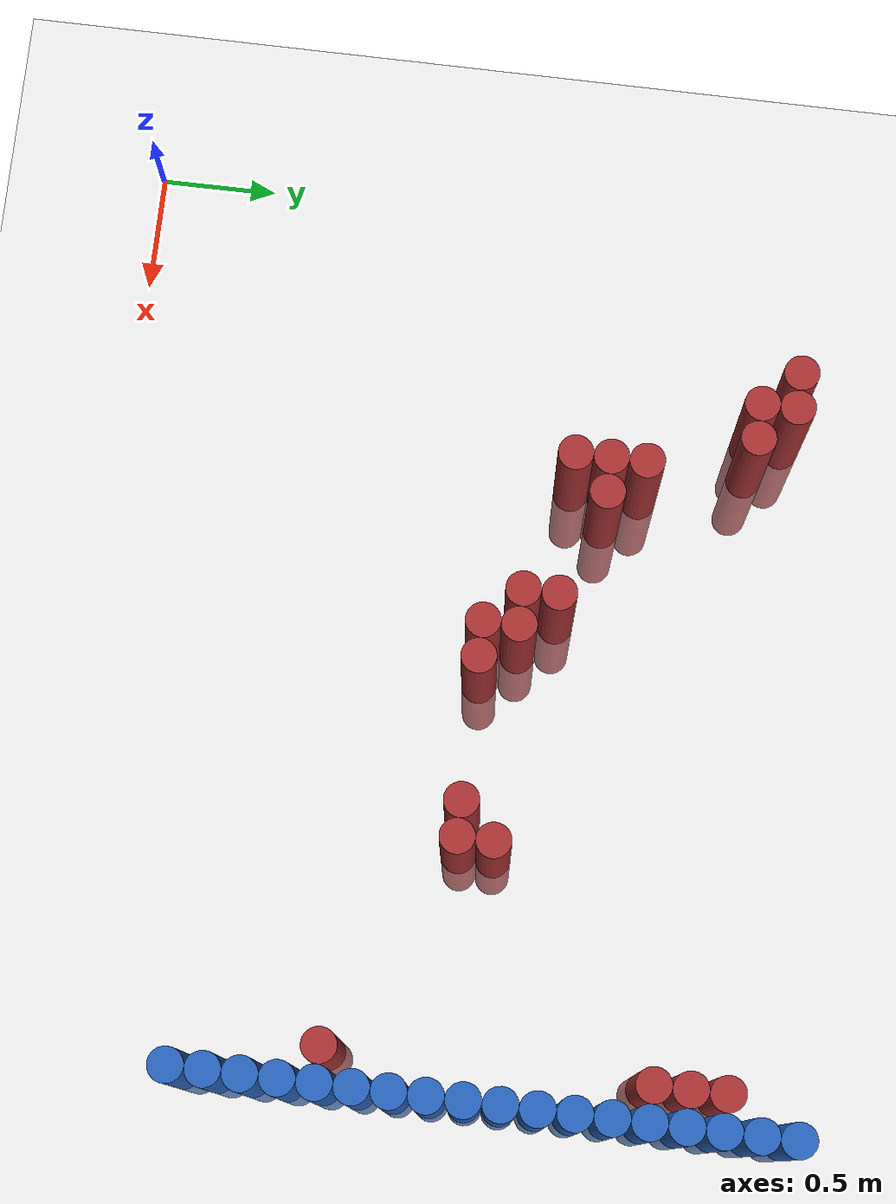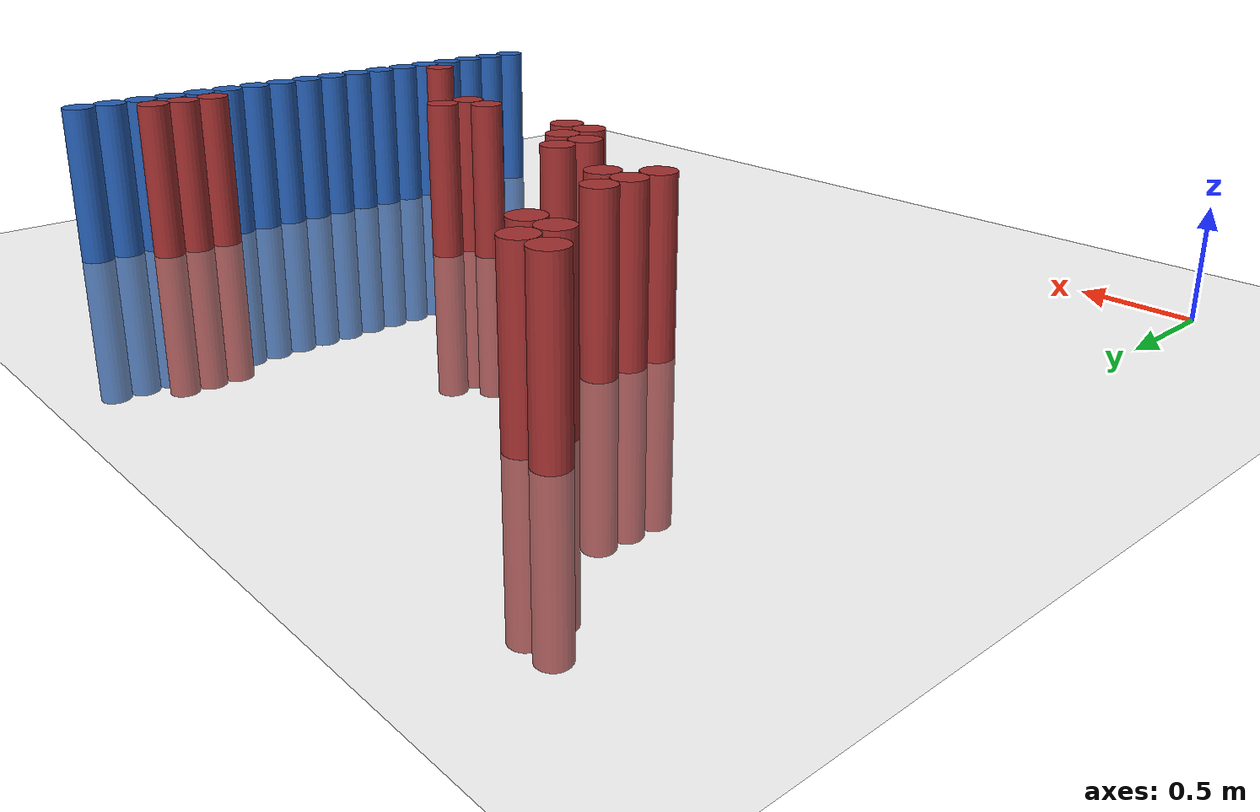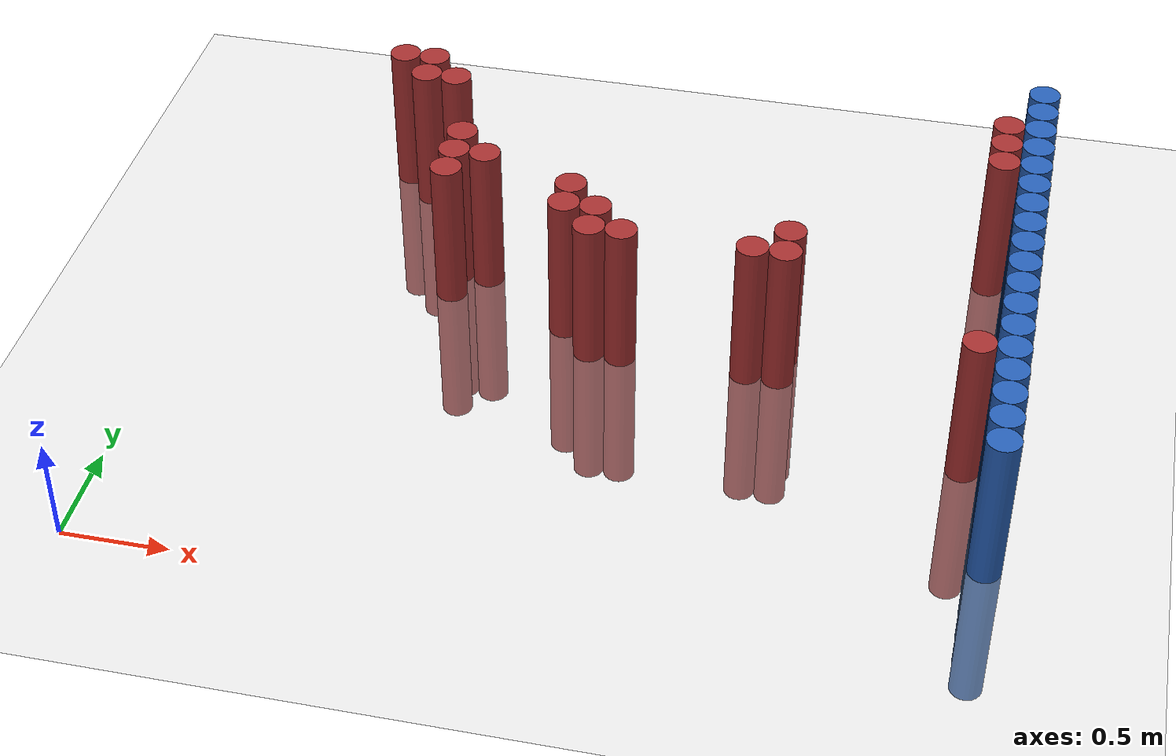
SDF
<sdf version="1.6">
 <world name="default">
  <model name="ground_plane">
   <static>1</static>
   <link name="link">
    <collision name="collision">
     <geometry><plane><normal>0 0 1</normal><size>100 100</size></plane></geometry>
     <surface><friction><ode><mu>100</mu><mu2>50</mu2></ode></friction></surface>
    </collision>
    <visual name="visual">
     <cast_shadows>0</cast_shadows>
     <geometry><plane><normal>0 0 1</normal><size>100 100</size></plane></geometry>
     <material>
      <script><uri>file://media/materials/scripts/gazebo.material</uri><name>Gazebo/Grey</name></script>
     </material>
    </visual>
   </link>
  </model>
  <model name="unit_cylinder_124">
   <static>1</static>
   <pose>3.925000 0.775000 0.000000 0.000000 0.000000 0.000000</pose>
   <link name="link">
    <inertial>
     <mass>1</mass>
     <inertia><ixx>0.145833</ixx><ixy>0</ixy><ixz>0</ixz><iyy>0.145833</iyy><iyz>0</iyz><izz>0.125</izz></inertia>
    </inertial>
    <collision name="collision">
     <geometry><cylinder><radius>0.075000</radius><length>1.5</length></cylinder></geometry>
    </collision>
    <visual name="visual">
     <geometry><cylinder><radius>0.075000</radius><length>1.5</length></cylinder></geometry>
     <material>
      <ambient>0.152000 0.379000 0.720000 1</ambient>
      <diffuse>0.152000 0.379000 0.720000 1</diffuse>
     </material>
     <material>
      <script><name>Gazebo/Grey</name><uri>file://media/materials/scripts/gazebo.material</uri></script>
     </material>
    </visual>
   </link>
  </model>
  <model name="unit_cylinder_126">
   <static>1</static>
   <pose>3.925000 0.925000 0.000000 0.000000 0.000000 0.000000</pose>
   <link name="link">
    <inertial>
     <mass>1</mass>
     <inertia><ixx>0.145833</ixx><ixy>0</ixy><ixz>0</ixz><iyy>0.145833</iyy><iyz>0</iyz><izz>0.125</izz></inertia>
    </inertial>
    <collision name="collision">
     <geometry><cylinder><radius>0.075000</radius><length>1.5</length></cylinder></geometry>
    </collision>
    <visual name="visual">
     <geometry><cylinder><radius>0.075000</radius><length>1.5</length></cylinder></geometry>
     <material>
      <ambient>0.152000 0.379000 0.720000 1</ambient>
      <diffuse>0.152000 0.379000 0.720000 1</diffuse>
     </material>
     <material>
      <script><name>Gazebo/Grey</name><uri>file://media/materials/scripts/gazebo.material</uri></script>
     </material>
    </visual>
   </link>
  </model>
  <model name="unit_cylinder_128">
   <static>1</static>
   <pose>3.925000 1.075000 0.000000 0.000000 0.000000 0.000000</pose>
   <link name="link">
    <inertial>
     <mass>1</mass>
     <inertia><ixx>0.145833</ixx><ixy>0</ixy><ixz>0</ixz><iyy>0.145833</iyy><iyz>0</iyz><izz>0.125</izz></inertia>
    </inertial>
    <collision name="collision">
     <geometry><cylinder><radius>0.075000</radius><length>1.5</length></cylinder></geometry>
    </collision>
    <visual name="visual">
     <geometry><cylinder><radius>0.075000</radius><length>1.5</length></cylinder></geometry>
     <material>
      <ambient>0.152000 0.379000 0.720000 1</ambient>
      <diffuse>0.152000 0.379000 0.720000 1</diffuse>
     </material>
     <material>
      <script><name>Gazebo/Grey</name><uri>file://media/materials/scripts/gazebo.material</uri></script>
     </material>
    </visual>
   </link>
  </model>
  <model name="unit_cylinder_130">
   <static>1</static>
   <pose>3.925000 1.225000 0.000000 0.000000 0.000000 0.000000</pose>
   <link name="link">
    <inertial>
     <mass>1</mass>
     <inertia><ixx>0.145833</ixx><ixy>0</ixy><ixz>0</ixz><iyy>0.145833</iyy><iyz>0</iyz><izz>0.125</izz></inertia>
    </inertial>
    <collision name="collision">
     <geometry><cylinder><radius>0.075000</radius><length>1.5</length></cylinder></geometry>
    </collision>
    <visual name="visual">
     <geometry><cylinder><radius>0.075000</radius><length>1.5</length></cylinder></geometry>
     <material>
      <ambient>0.152000 0.379000 0.720000 1</ambient>
      <diffuse>0.152000 0.379000 0.720000 1</diffuse>
     </material>
     <material>
      <script><name>Gazebo/Grey</name><uri>file://media/materials/scripts/gazebo.material</uri></script>
     </material>
    </visual>
   </link>
  </model>
  <model name="unit_cylinder_132">
   <static>1</static>
   <pose>3.925000 1.375000 0.000000 0.000000 0.000000 0.000000</pose>
   <link name="link">
    <inertial>
     <mass>1</mass>
     <inertia><ixx>0.145833</ixx><ixy>0</ixy><ixz>0</ixz><iyy>0.145833</iyy><iyz>0</iyz><izz>0.125</izz></inertia>
    </inertial>
    <collision name="collision">
     <geometry><cylinder><radius>0.075000</radius><length>1.5</length></cylinder></geometry>
    </collision>
    <visual name="visual">
     <geometry><cylinder><radius>0.075000</radius><length>1.5</length></cylinder></geometry>
     <material>
      <ambient>0.152000 0.379000 0.720000 1</ambient>
      <diffuse>0.152000 0.379000 0.720000 1</diffuse>
     </material>
     <material>
      <script><name>Gazebo/Grey</name><uri>file://media/materials/scripts/gazebo.material</uri></script>
     </material>
    </visual>
   </link>
  </model>
  <model name="unit_cylinder_134">
   <static>1</static>
   <pose>3.925000 1.525000 0.000000 0.000000 0.000000 0.000000</pose>
   <link name="link">
    <inertial>
     <mass>1</mass>
     <inertia><ixx>0.145833</ixx><ixy>0</ixy><ixz>0</ixz><iyy>0.145833</iyy><iyz>0</iyz><izz>0.125</izz></inertia>
    </inertial>
    <collision name="collision">
     <geometry><cylinder><radius>0.075000</radius><length>1.5</length></cylinder></geometry>
    </collision>
    <visual name="visual">
     <geometry><cylinder><radius>0.075000</radius><length>1.5</length></cylinder></geometry>
     <material>
      <ambient>0.152000 0.379000 0.720000 1</ambient>
      <diffuse>0.152000 0.379000 0.720000 1</diffuse>
     </material>
     <material>
      <script><name>Gazebo/Grey</name><uri>file://media/materials/scripts/gazebo.material</uri></script>
     </material>
    </visual>
   </link>
  </model>
  <model name="unit_cylinder_136">
   <static>1</static>
   <pose>3.925000 1.675000 0.000000 0.000000 0.000000 0.000000</pose>
   <link name="link">
    <inertial>
     <mass>1</mass>
     <inertia><ixx>0.145833</ixx><ixy>0</ixy><ixz>0</ixz><iyy>0.145833</iyy><iyz>0</iyz><izz>0.125</izz></inertia>
    </inertial>
    <collision name="collision">
     <geometry><cylinder><radius>0.075000</radius><length>1.5</length></cylinder></geometry>
    </collision>
    <visual name="visual">
     <geometry><cylinder><radius>0.075000</radius><length>1.5</length></cylinder></geometry>
     <material>
      <ambient>0.152000 0.379000 0.720000 1</ambient>
      <diffuse>0.152000 0.379000 0.720000 1</diffuse>
     </material>
     <material>
      <script><name>Gazebo/Grey</name><uri>file://media/materials/scripts/gazebo.material</uri></script>
     </material>
    </visual>
   </link>
  </model>
  <model name="unit_cylinder_138">
   <static>1</static>
   <pose>3.925000 1.825000 0.000000 0.000000 0.000000 0.000000</pose>
   <link name="link">
    <inertial>
     <mass>1</mass>
     <inertia><ixx>0.145833</ixx><ixy>0</ixy><ixz>0</ixz><iyy>0.145833</iyy><iyz>0</iyz><izz>0.125</izz></inertia>
    </inertial>
    <collision name="collision">
     <geometry><cylinder><radius>0.075000</radius><length>1.5</length></cylinder></geometry>
    </collision>
    <visual name="visual">
     <geometry><cylinder><radius>0.075000</radius><length>1.5</length></cylinder></geometry>
     <material>
      <ambient>0.152000 0.379000 0.720000 1</ambient>
      <diffuse>0.152000 0.379000 0.720000 1</diffuse>
     </material>
     <material>
      <script><name>Gazebo/Grey</name><uri>file://media/materials/scripts/gazebo.material</uri></script>
     </material>
    </visual>
   </link>
  </model>
  <model name="unit_cylinder_140">
   <static>1</static>
   <pose>3.925000 1.975000 0.000000 0.000000 0.000000 0.000000</pose>
   <link name="link">
    <inertial>
     <mass>1</mass>
     <inertia><ixx>0.145833</ixx><ixy>0</ixy><ixz>0</ixz><iyy>0.145833</iyy><iyz>0</iyz><izz>0.125</izz></inertia>
    </inertial>
    <collision name="collision">
     <geometry><cylinder><radius>0.075000</radius><length>1.5</length></cylinder></geometry>
    </collision>
    <visual name="visual">
     <geometry><cylinder><radius>0.075000</radius><length>1.5</length></cylinder></geometry>
     <material>
      <ambient>0.152000 0.379000 0.720000 1</ambient>
      <diffuse>0.152000 0.379000 0.720000 1</diffuse>
     </material>
     <material>
      <script><name>Gazebo/Grey</name><uri>file://media/materials/scripts/gazebo.material</uri></script>
     </material>
    </visual>
   </link>
  </model>
  <model name="unit_cylinder_142">
   <static>1</static>
   <pose>3.925000 2.125000 0.000000 0.000000 0.000000 0.000000</pose>
   <link name="link">
    <inertial>
     <mass>1</mass>
     <inertia><ixx>0.145833</ixx><ixy>0</ixy><ixz>0</ixz><iyy>0.145833</iyy><iyz>0</iyz><izz>0.125</izz></inertia>
    </inertial>
    <collision name="collision">
     <geometry><cylinder><radius>0.075000</radius><length>1.5</length></cylinder></geometry>
    </collision>
    <visual name="visual">
     <geometry><cylinder><radius>0.075000</radius><length>1.5</length></cylinder></geometry>
     <material>
      <ambient>0.152000 0.379000 0.720000 1</ambient>
      <diffuse>0.152000 0.379000 0.720000 1</diffuse>
     </material>
     <material>
      <script><name>Gazebo/Grey</name><uri>file://media/materials/scripts/gazebo.material</uri></script>
     </material>
    </visual>
   </link>
  </model>
  <model name="unit_cylinder_144">
   <static>1</static>
   <pose>3.925000 2.275000 0.000000 0.000000 0.000000 0.000000</pose>
   <link name="link">
    <inertial>
     <mass>1</mass>
     <inertia><ixx>0.145833</ixx><ixy>0</ixy><ixz>0</ixz><iyy>0.145833</iyy><iyz>0</iyz><izz>0.125</izz></inertia>
    </inertial>
    <collision name="collision">
     <geometry><cylinder><radius>0.075000</radius><length>1.5</length></cylinder></geometry>
    </collision>
    <visual name="visual">
     <geometry><cylinder><radius>0.075000</radius><length>1.5</length></cylinder></geometry>
     <material>
      <ambient>0.152000 0.379000 0.720000 1</ambient>
      <diffuse>0.152000 0.379000 0.720000 1</diffuse>
     </material>
     <material>
      <script><name>Gazebo/Grey</name><uri>file://media/materials/scripts/gazebo.material</uri></script>
     </material>
    </visual>
   </link>
  </model>
  <model name="unit_cylinder_146">
   <static>1</static>
   <pose>3.925000 2.425000 0.000000 0.000000 0.000000 0.000000</pose>
   <link name="link">
    <inertial>
     <mass>1</mass>
     <inertia><ixx>0.145833</ixx><ixy>0</ixy><ixz>0</ixz><iyy>0.145833</iyy><iyz>0</iyz><izz>0.125</izz></inertia>
    </inertial>
    <collision name="collision">
     <geometry><cylinder><radius>0.075000</radius><length>1.5</length></cylinder></geometry>
    </collision>
    <visual name="visual">
     <geometry><cylinder><radius>0.075000</radius><length>1.5</length></cylinder></geometry>
     <material>
      <ambient>0.152000 0.379000 0.720000 1</ambient>
      <diffuse>0.152000 0.379000 0.720000 1</diffuse>
     </material>
     <material>
      <script><name>Gazebo/Grey</name><uri>file://media/materials/scripts/gazebo.material</uri></script>
     </material>
    </visual>
   </link>
  </model>
  <model name="unit_cylinder_148">
   <static>1</static>
   <pose>3.925000 2.575000 0.000000 0.000000 0.000000 0.000000</pose>
   <link name="link">
    <inertial>
     <mass>1</mass>
     <inertia><ixx>0.145833</ixx><ixy>0</ixy><ixz>0</ixz><iyy>0.145833</iyy><iyz>0</iyz><izz>0.125</izz></inertia>
    </inertial>
    <collision name="collision">
     <geometry><cylinder><radius>0.075000</radius><length>1.5</length></cylinder></geometry>
    </collision>
    <visual name="visual">
     <geometry><cylinder><radius>0.075000</radius><length>1.5</length></cylinder></geometry>
     <material>
      <ambient>0.152000 0.379000 0.720000 1</ambient>
      <diffuse>0.152000 0.379000 0.720000 1</diffuse>
     </material>
     <material>
      <script><name>Gazebo/Grey</name><uri>file://media/materials/scripts/gazebo.material</uri></script>
     </material>
    </visual>
   </link>
  </model>
  <model name="unit_cylinder_150">
   <static>1</static>
   <pose>3.925000 2.725000 0.000000 0.000000 0.000000 0.000000</pose>
   <link name="link">
    <inertial>
     <mass>1</mass>
     <inertia><ixx>0.145833</ixx><ixy>0</ixy><ixz>0</ixz><iyy>0.145833</iyy><iyz>0</iyz><izz>0.125</izz></inertia>
    </inertial>
    <collision name="collision">
     <geometry><cylinder><radius>0.075000</radius><length>1.5</length></cylinder></geometry>
    </collision>
    <visual name="visual">
     <geometry><cylinder><radius>0.075000</radius><length>1.5</length></cylinder></geometry>
     <material>
      <ambient>0.152000 0.379000 0.720000 1</ambient>
      <diffuse>0.152000 0.379000 0.720000 1</diffuse>
     </material>
     <material>
      <script><name>Gazebo/Grey</name><uri>file://media/materials/scripts/gazebo.material</uri></script>
     </material>
    </visual>
   </link>
  </model>
  <model name="unit_cylinder_152">
   <static>1</static>
   <pose>3.925000 2.875000 0.000000 0.000000 0.000000 0.000000</pose>
   <link name="link">
    <inertial>
     <mass>1</mass>
     <inertia><ixx>0.145833</ixx><ixy>0</ixy><ixz>0</ixz><iyy>0.145833</iyy><iyz>0</iyz><izz>0.125</izz></inertia>
    </inertial>
    <collision name="collision">
     <geometry><cylinder><radius>0.075000</radius><length>1.5</length></cylinder></geometry>
    </collision>
    <visual name="visual">
     <geometry><cylinder><radius>0.075000</radius><length>1.5</length></cylinder></geometry>
     <material>
      <ambient>0.152000 0.379000 0.720000 1</ambient>
      <diffuse>0.152000 0.379000 0.720000 1</diffuse>
     </material>
     <material>
      <script><name>Gazebo/Grey</name><uri>file://media/materials/scripts/gazebo.material</uri></script>
     </material>
    </visual>
   </link>
  </model>
  <model name="unit_cylinder_154">
   <static>1</static>
   <pose>3.925000 3.025000 0.000000 0.000000 0.000000 0.000000</pose>
   <link name="link">
    <inertial>
     <mass>1</mass>
     <inertia><ixx>0.145833</ixx><ixy>0</ixy><ixz>0</ixz><iyy>0.145833</iyy><iyz>0</iyz><izz>0.125</izz></inertia>
    </inertial>
    <collision name="collision">
     <geometry><cylinder><radius>0.075000</radius><length>1.5</length></cylinder></geometry>
    </collision>
    <visual name="visual">
     <geometry><cylinder><radius>0.075000</radius><length>1.5</length></cylinder></geometry>
     <material>
      <ambient>0.152000 0.379000 0.720000 1</ambient>
      <diffuse>0.152000 0.379000 0.720000 1</diffuse>
     </material>
     <material>
      <script><name>Gazebo/Grey</name><uri>file://media/materials/scripts/gazebo.material</uri></script>
     </material>
    </visual>
   </link>
  </model>
  <model name="unit_cylinder_156">
   <static>1</static>
   <pose>3.925000 3.175000 0.000000 0.000000 0.000000 0.000000</pose>
   <link name="link">
    <inertial>
     <mass>1</mass>
     <inertia><ixx>0.145833</ixx><ixy>0</ixy><ixz>0</ixz><iyy>0.145833</iyy><iyz>0</iyz><izz>0.125</izz></inertia>
    </inertial>
    <collision name="collision">
     <geometry><cylinder><radius>0.075000</radius><length>1.5</length></cylinder></geometry>
    </collision>
    <visual name="visual">
     <geometry><cylinder><radius>0.075000</radius><length>1.5</length></cylinder></geometry>
     <material>
      <ambient>0.152000 0.379000 0.720000 1</ambient>
      <diffuse>0.152000 0.379000 0.720000 1</diffuse>
     </material>
     <material>
      <script><name>Gazebo/Grey</name><uri>file://media/materials/scripts/gazebo.material</uri></script>
     </material>
    </visual>
   </link>
  </model>
  <model name="unit_cylinder_330">
   <static>1</static>
   <pose>0.775000 2.875000 0.000000 0.000000 0.000000 0.000000</pose>
   <link name="link">
    <inertial>
     <mass>1</mass>
     <inertia><ixx>0.145833</ixx><ixy>0</ixy><ixz>0</ixz><iyy>0.145833</iyy><iyz>0</iyz><izz>0.125</izz></inertia>
    </inertial>
    <collision name="collision">
     <geometry><cylinder><radius>0.075000</radius><length>1.5</length></cylinder></geometry>
    </collision>
    <visual name="visual">
     <geometry><cylinder><radius>0.075000</radius><length>1.5</length></cylinder></geometry>
     <material>
      <ambient>0.648000 0.192000 0.192000 1</ambient>
      <diffuse>0.648000 0.192000 0.192000 1</diffuse>
     </material>
     <material>
      <script><name>Gazebo/Grey</name><uri>file://media/materials/scripts/gazebo.material</uri></script>
     </material>
    </visual>
   </link>
  </model>
  <model name="unit_cylinder_332">
   <static>1</static>
   <pose>0.925000 2.725000 0.000000 0.000000 0.000000 0.000000</pose>
   <link name="link">
    <inertial>
     <mass>1</mass>
     <inertia><ixx>0.145833</ixx><ixy>0</ixy><ixz>0</ixz><iyy>0.145833</iyy><iyz>0</iyz><izz>0.125</izz></inertia>
    </inertial>
    <collision name="collision">
     <geometry><cylinder><radius>0.075000</radius><length>1.5</length></cylinder></geometry>
    </collision>
    <visual name="visual">
     <geometry><cylinder><radius>0.075000</radius><length>1.5</length></cylinder></geometry>
     <material>
      <ambient>0.648000 0.192000 0.192000 1</ambient>
      <diffuse>0.648000 0.192000 0.192000 1</diffuse>
     </material>
     <material>
      <script><name>Gazebo/Grey</name><uri>file://media/materials/scripts/gazebo.material</uri></script>
     </material>
    </visual>
   </link>
  </model>
  <model name="unit_cylinder_333">
   <static>1</static>
   <pose>0.925000 2.875000 0.000000 0.000000 0.000000 0.000000</pose>
   <link name="link">
    <inertial>
     <mass>1</mass>
     <inertia><ixx>0.145833</ixx><ixy>0</ixy><ixz>0</ixz><iyy>0.145833</iyy><iyz>0</iyz><izz>0.125</izz></inertia>
    </inertial>
    <collision name="collision">
     <geometry><cylinder><radius>0.075000</radius><length>1.5</length></cylinder></geometry>
    </collision>
    <visual name="visual">
     <geometry><cylinder><radius>0.075000</radius><length>1.5</length></cylinder></geometry>
     <material>
      <ambient>0.648000 0.192000 0.192000 1</ambient>
      <diffuse>0.648000 0.192000 0.192000 1</diffuse>
     </material>
     <material>
      <script><name>Gazebo/Grey</name><uri>file://media/materials/scripts/gazebo.material</uri></script>
     </material>
    </visual>
   </link>
  </model>
  <model name="unit_cylinder_339">
   <static>1</static>
   <pose>1.075000 2.725000 0.000000 0.000000 0.000000 0.000000</pose>
   <link name="link">
    <inertial>
     <mass>1</mass>
     <inertia><ixx>0.145833</ixx><ixy>0</ixy><ixz>0</ixz><iyy>0.145833</iyy><iyz>0</iyz><izz>0.125</izz></inertia>
    </inertial>
    <collision name="collision">
     <geometry><cylinder><radius>0.075000</radius><length>1.5</length></cylinder></geometry>
    </collision>
    <visual name="visual">
     <geometry><cylinder><radius>0.075000</radius><length>1.5</length></cylinder></geometry>
     <material>
      <ambient>0.648000 0.192000 0.192000 1</ambient>
      <diffuse>0.648000 0.192000 0.192000 1</diffuse>
     </material>
     <material>
      <script><name>Gazebo/Grey</name><uri>file://media/materials/scripts/gazebo.material</uri></script>
     </material>
    </visual>
   </link>
  </model>
  <model name="unit_cylinder_341">
   <static>1</static>
   <pose>1.225000 1.975000 0.000000 0.000000 0.000000 0.000000</pose>
   <link name="link">
    <inertial>
     <mass>1</mass>
     <inertia><ixx>0.145833</ixx><ixy>0</ixy><ixz>0</ixz><iyy>0.145833</iyy><iyz>0</iyz><izz>0.125</izz></inertia>
    </inertial>
    <collision name="collision">
     <geometry><cylinder><radius>0.075000</radius><length>1.5</length></cylinder></geometry>
    </collision>
    <visual name="visual">
     <geometry><cylinder><radius>0.075000</radius><length>1.5</length></cylinder></geometry>
     <material>
      <ambient>0.648000 0.192000 0.192000 1</ambient>
      <diffuse>0.648000 0.192000 0.192000 1</diffuse>
     </material>
     <material>
      <script><name>Gazebo/Grey</name><uri>file://media/materials/scripts/gazebo.material</uri></script>
     </material>
    </visual>
   </link>
  </model>
  <model name="unit_cylinder_342">
   <static>1</static>
   <pose>1.225000 2.125000 0.000000 0.000000 0.000000 0.000000</pose>
   <link name="link">
    <inertial>
     <mass>1</mass>
     <inertia><ixx>0.145833</ixx><ixy>0</ixy><ixz>0</ixz><iyy>0.145833</iyy><iyz>0</iyz><izz>0.125</izz></inertia>
    </inertial>
    <collision name="collision">
     <geometry><cylinder><radius>0.075000</radius><length>1.5</length></cylinder></geometry>
    </collision>
    <visual name="visual">
     <geometry><cylinder><radius>0.075000</radius><length>1.5</length></cylinder></geometry>
     <material>
      <ambient>0.648000 0.192000 0.192000 1</ambient>
      <diffuse>0.648000 0.192000 0.192000 1</diffuse>
     </material>
     <material>
      <script><name>Gazebo/Grey</name><uri>file://media/materials/scripts/gazebo.material</uri></script>
     </material>
    </visual>
   </link>
  </model>
  <model name="unit_cylinder_343">
   <static>1</static>
   <pose>1.225000 2.275000 0.000000 0.000000 0.000000 0.000000</pose>
   <link name="link">
    <inertial>
     <mass>1</mass>
     <inertia><ixx>0.145833</ixx><ixy>0</ixy><ixz>0</ixz><iyy>0.145833</iyy><iyz>0</iyz><izz>0.125</izz></inertia>
    </inertial>
    <collision name="collision">
     <geometry><cylinder><radius>0.075000</radius><length>1.5</length></cylinder></geometry>
    </collision>
    <visual name="visual">
     <geometry><cylinder><radius>0.075000</radius><length>1.5</length></cylinder></geometry>
     <material>
      <ambient>0.648000 0.192000 0.192000 1</ambient>
      <diffuse>0.648000 0.192000 0.192000 1</diffuse>
     </material>
     <material>
      <script><name>Gazebo/Grey</name><uri>file://media/materials/scripts/gazebo.material</uri></script>
     </material>
    </visual>
   </link>
  </model>
  <model name="unit_cylinder_344">
   <static>1</static>
   <pose>1.375000 2.125000 0.000000 0.000000 0.000000 0.000000</pose>
   <link name="link">
    <inertial>
     <mass>1</mass>
     <inertia><ixx>0.145833</ixx><ixy>0</ixy><ixz>0</ixz><iyy>0.145833</iyy><iyz>0</iyz><izz>0.125</izz></inertia>
    </inertial>
    <collision name="collision">
     <geometry><cylinder><radius>0.075000</radius><length>1.5</length></cylinder></geometry>
    </collision>
    <visual name="visual">
     <geometry><cylinder><radius>0.075000</radius><length>1.5</length></cylinder></geometry>
     <material>
      <ambient>0.648000 0.192000 0.192000 1</ambient>
      <diffuse>0.648000 0.192000 0.192000 1</diffuse>
     </material>
     <material>
      <script><name>Gazebo/Grey</name><uri>file://media/materials/scripts/gazebo.material</uri></script>
     </material>
    </visual>
   </link>
  </model>
  <model name="unit_cylinder_345">
   <static>1</static>
   <pose>1.825000 1.825000 0.000000 0.000000 0.000000 0.000000</pose>
   <link name="link">
    <inertial>
     <mass>1</mass>
     <inertia><ixx>0.145833</ixx><ixy>0</ixy><ixz>0</ixz><iyy>0.145833</iyy><iyz>0</iyz><izz>0.125</izz></inertia>
    </inertial>
    <collision name="collision">
     <geometry><cylinder><radius>0.075000</radius><length>1.5</length></cylinder></geometry>
    </collision>
    <visual name="visual">
     <geometry><cylinder><radius>0.075000</radius><length>1.5</length></cylinder></geometry>
     <material>
      <ambient>0.648000 0.192000 0.192000 1</ambient>
      <diffuse>0.648000 0.192000 0.192000 1</diffuse>
     </material>
     <material>
      <script><name>Gazebo/Grey</name><uri>file://media/materials/scripts/gazebo.material</uri></script>
     </material>
    </visual>
   </link>
  </model>
  <model name="unit_cylinder_346">
   <static>1</static>
   <pose>1.825000 1.975000 0.000000 0.000000 0.000000 0.000000</pose>
   <link name="link">
    <inertial>
     <mass>1</mass>
     <inertia><ixx>0.145833</ixx><ixy>0</ixy><ixz>0</ixz><iyy>0.145833</iyy><iyz>0</iyz><izz>0.125</izz></inertia>
    </inertial>
    <collision name="collision">
     <geometry><cylinder><radius>0.075000</radius><length>1.5</length></cylinder></geometry>
    </collision>
    <visual name="visual">
     <geometry><cylinder><radius>0.075000</radius><length>1.5</length></cylinder></geometry>
     <material>
      <ambient>0.648000 0.192000 0.192000 1</ambient>
      <diffuse>0.648000 0.192000 0.192000 1</diffuse>
     </material>
     <material>
      <script><name>Gazebo/Grey</name><uri>file://media/materials/scripts/gazebo.material</uri></script>
     </material>
    </visual>
   </link>
  </model>
  <model name="unit_cylinder_349">
   <static>1</static>
   <pose>1.975000 1.675000 0.000000 0.000000 0.000000 0.000000</pose>
   <link name="link">
    <inertial>
     <mass>1</mass>
     <inertia><ixx>0.145833</ixx><ixy>0</ixy><ixz>0</ixz><iyy>0.145833</iyy><iyz>0</iyz><izz>0.125</izz></inertia>
    </inertial>
    <collision name="collision">
     <geometry><cylinder><radius>0.075000</radius><length>1.5</length></cylinder></geometry>
    </collision>
    <visual name="visual">
     <geometry><cylinder><radius>0.075000</radius><length>1.5</length></cylinder></geometry>
     <material>
      <ambient>0.648000 0.192000 0.192000 1</ambient>
      <diffuse>0.648000 0.192000 0.192000 1</diffuse>
     </material>
     <material>
      <script><name>Gazebo/Grey</name><uri>file://media/materials/scripts/gazebo.material</uri></script>
     </material>
    </visual>
   </link>
  </model>
  <model name="unit_cylinder_350">
   <static>1</static>
   <pose>1.975000 1.825000 0.000000 0.000000 0.000000 0.000000</pose>
   <link name="link">
    <inertial>
     <mass>1</mass>
     <inertia><ixx>0.145833</ixx><ixy>0</ixy><ixz>0</ixz><iyy>0.145833</iyy><iyz>0</iyz><izz>0.125</izz></inertia>
    </inertial>
    <collision name="collision">
     <geometry><cylinder><radius>0.075000</radius><length>1.5</length></cylinder></geometry>
    </collision>
    <visual name="visual">
     <geometry><cylinder><radius>0.075000</radius><length>1.5</length></cylinder></geometry>
     <material>
      <ambient>0.648000 0.192000 0.192000 1</ambient>
      <diffuse>0.648000 0.192000 0.192000 1</diffuse>
     </material>
     <material>
      <script><name>Gazebo/Grey</name><uri>file://media/materials/scripts/gazebo.material</uri></script>
     </material>
    </visual>
   </link>
  </model>
  <model name="unit_cylinder_354">
   <static>1</static>
   <pose>2.125000 1.675000 0.000000 0.000000 0.000000 0.000000</pose>
   <link name="link">
    <inertial>
     <mass>1</mass>
     <inertia><ixx>0.145833</ixx><ixy>0</ixy><ixz>0</ixz><iyy>0.145833</iyy><iyz>0</iyz><izz>0.125</izz></inertia>
    </inertial>
    <collision name="collision">
     <geometry><cylinder><radius>0.075000</radius><length>1.5</length></cylinder></geometry>
    </collision>
    <visual name="visual">
     <geometry><cylinder><radius>0.075000</radius><length>1.5</length></cylinder></geometry>
     <material>
      <ambient>0.648000 0.192000 0.192000 1</ambient>
      <diffuse>0.648000 0.192000 0.192000 1</diffuse>
     </material>
     <material>
      <script><name>Gazebo/Grey</name><uri>file://media/materials/scripts/gazebo.material</uri></script>
     </material>
    </visual>
   </link>
  </model>
  <model name="unit_cylinder_365">
   <static>1</static>
   <pose>2.725000 1.675000 0.000000 0.000000 0.000000 0.000000</pose>
   <link name="link">
    <inertial>
     <mass>1</mass>
     <inertia><ixx>0.145833</ixx><ixy>0</ixy><ixz>0</ixz><iyy>0.145833</iyy><iyz>0</iyz><izz>0.125</izz></inertia>
    </inertial>
    <collision name="collision">
     <geometry><cylinder><radius>0.075000</radius><length>1.5</length></cylinder></geometry>
    </collision>
    <visual name="visual">
     <geometry><cylinder><radius>0.075000</radius><length>1.5</length></cylinder></geometry>
     <material>
      <ambient>0.648000 0.192000 0.192000 1</ambient>
      <diffuse>0.648000 0.192000 0.192000 1</diffuse>
     </material>
     <material>
      <script><name>Gazebo/Grey</name><uri>file://media/materials/scripts/gazebo.material</uri></script>
     </material>
    </visual>
   </link>
  </model>
  <model name="unit_cylinder_366">
   <static>1</static>
   <pose>2.875000 1.675000 0.000000 0.000000 0.000000 0.000000</pose>
   <link name="link">
    <inertial>
     <mass>1</mass>
     <inertia><ixx>0.145833</ixx><ixy>0</ixy><ixz>0</ixz><iyy>0.145833</iyy><iyz>0</iyz><izz>0.125</izz></inertia>
    </inertial>
    <collision name="collision">
     <geometry><cylinder><radius>0.075000</radius><length>1.5</length></cylinder></geometry>
    </collision>
    <visual name="visual">
     <geometry><cylinder><radius>0.075000</radius><length>1.5</length></cylinder></geometry>
     <material>
      <ambient>0.648000 0.192000 0.192000 1</ambient>
      <diffuse>0.648000 0.192000 0.192000 1</diffuse>
     </material>
     <material>
      <script><name>Gazebo/Grey</name><uri>file://media/materials/scripts/gazebo.material</uri></script>
     </material>
    </visual>
   </link>
  </model>
  <model name="unit_cylinder_367">
   <static>1</static>
   <pose>2.875000 1.825000 0.000000 0.000000 0.000000 0.000000</pose>
   <link name="link">
    <inertial>
     <mass>1</mass>
     <inertia><ixx>0.145833</ixx><ixy>0</ixy><ixz>0</ixz><iyy>0.145833</iyy><iyz>0</iyz><izz>0.125</izz></inertia>
    </inertial>
    <collision name="collision">
     <geometry><cylinder><radius>0.075000</radius><length>1.5</length></cylinder></geometry>
    </collision>
    <visual name="visual">
     <geometry><cylinder><radius>0.075000</radius><length>1.5</length></cylinder></geometry>
     <material>
      <ambient>0.648000 0.192000 0.192000 1</ambient>
      <diffuse>0.648000 0.192000 0.192000 1</diffuse>
     </material>
     <material>
      <script><name>Gazebo/Grey</name><uri>file://media/materials/scripts/gazebo.material</uri></script>
     </material>
    </visual>
   </link>
  </model>
  <model name="unit_cylinder_377">
   <static>1</static>
   <pose>3.775000 1.225000 0.000000 0.000000 0.000000 0.000000</pose>
   <link name="link">
    <inertial>
     <mass>1</mass>
     <inertia><ixx>0.145833</ixx><ixy>0</ixy><ixz>0</ixz><iyy>0.145833</iyy><iyz>0</iyz><izz>0.125</izz></inertia>
    </inertial>
    <collision name="collision">
     <geometry><cylinder><radius>0.075000</radius><length>1.5</length></cylinder></geometry>
    </collision>
    <visual name="visual">
     <geometry><cylinder><radius>0.075000</radius><length>1.5</length></cylinder></geometry>
     <material>
      <ambient>0.648000 0.192000 0.192000 1</ambient>
      <diffuse>0.648000 0.192000 0.192000 1</diffuse>
     </material>
     <material>
      <script><name>Gazebo/Grey</name><uri>file://media/materials/scripts/gazebo.material</uri></script>
     </material>
    </visual>
   </link>
  </model>
  <model name="unit_cylinder_378">
   <static>1</static>
   <pose>3.775000 2.575000 0.000000 0.000000 0.000000 0.000000</pose>
   <link name="link">
    <inertial>
     <mass>1</mass>
     <inertia><ixx>0.145833</ixx><ixy>0</ixy><ixz>0</ixz><iyy>0.145833</iyy><iyz>0</iyz><izz>0.125</izz></inertia>
    </inertial>
    <collision name="collision">
     <geometry><cylinder><radius>0.075000</radius><length>1.5</length></cylinder></geometry>
    </collision>
    <visual name="visual">
     <geometry><cylinder><radius>0.075000</radius><length>1.5</length></cylinder></geometry>
     <material>
      <ambient>0.648000 0.192000 0.192000 1</ambient>
      <diffuse>0.648000 0.192000 0.192000 1</diffuse>
     </material>
     <material>
      <script><name>Gazebo/Grey</name><uri>file://media/materials/scripts/gazebo.material</uri></script>
     </material>
    </visual>
   </link>
  </model>
  <model name="unit_cylinder_379">
   <static>1</static>
   <pose>3.775000 2.725000 0.000000 0.000000 0.000000 0.000000</pose>
   <link name="link">
    <inertial>
     <mass>1</mass>
     <inertia><ixx>0.145833</ixx><ixy>0</ixy><ixz>0</ixz><iyy>0.145833</iyy><iyz>0</iyz><izz>0.125</izz></inertia>
    </inertial>
    <collision name="collision">
     <geometry><cylinder><radius>0.075000</radius><length>1.5</length></cylinder></geometry>
    </collision>
    <visual name="visual">
     <geometry><cylinder><radius>0.075000</radius><length>1.5</length></cylinder></geometry>
     <material>
      <ambient>0.648000 0.192000 0.192000 1</ambient>
      <diffuse>0.648000 0.192000 0.192000 1</diffuse>
     </material>
     <material>
      <script><name>Gazebo/Grey</name><uri>file://media/materials/scripts/gazebo.material</uri></script>
     </material>
    </visual>
   </link>
  </model>
  <model name="unit_cylinder_380">
   <static>1</static>
   <pose>3.775000 2.875000 0.000000 0.000000 0.000000 0.000000</pose>
   <link name="link">
    <inertial>
     <mass>1</mass>
     <inertia><ixx>0.145833</ixx><ixy>0</ixy><ixz>0</ixz><iyy>0.145833</iyy><iyz>0</iyz><izz>0.125</izz></inertia>
    </inertial>
    <collision name="collision">
     <geometry><cylinder><radius>0.075000</radius><length>1.5</length></cylinder></geometry>
    </collision>
    <visual name="visual">
     <geometry><cylinder><radius>0.075000</radius><length>1.5</length></cylinder></geometry>
     <material>
      <ambient>0.648000 0.192000 0.192000 1</ambient>
      <diffuse>0.648000 0.192000 0.192000 1</diffuse>
     </material>
     <material>
      <script><name>Gazebo/Grey</name><uri>file://media/materials/scripts/gazebo.material</uri></script>
     </material>
    </visual>
   </link>
  </model>
  <model name="unit_cylinder_402">
   <static>1</static>
   <pose>3.925000 0.625000 0.000000 0.000000 0.000000 0.000000</pose>
   <link name="link">
    <inertial>
     <mass>1</mass>
     <inertia><ixx>0.145833</ixx><ixy>0</ixy><ixz>0</ixz><iyy>0.145833</iyy><iyz>0</iyz><izz>0.125</izz></inertia>
    </inertial>
    <collision name="collision">
     <geometry><cylinder><radius>0.075000</radius><length>1.5</length></cylinder></geometry>
    </collision>
    <visual name="visual">
     <geometry><cylinder><radius>0.075000</radius><length>1.5</length></cylinder></geometry>
     <material>
      <ambient>0.152000 0.379000 0.720000 1</ambient>
      <diffuse>0.152000 0.379000 0.720000 1</diffuse>
     </material>
     <material>
      <script><name>Gazebo/Grey</name><uri>file://media/materials/scripts/gazebo.material</uri></script>
     </material>
    </visual>
   </link>
  </model>
  <model name="unit_cylinder_403">
   <static>1</static>
   <pose>3.925000 0.775000 0.000000 0.000000 0.000000 0.000000</pose>
   <link name="link">
    <inertial>
     <mass>1</mass>
     <inertia><ixx>0.145833</ixx><ixy>0</ixy><ixz>0</ixz><iyy>0.145833</iyy><iyz>0</iyz><izz>0.125</izz></inertia>
    </inertial>
    <collision name="collision">
     <geometry><cylinder><radius>0.075000</radius><length>1.5</length></cylinder></geometry>
    </collision>
    <visual name="visual">
     <geometry><cylinder><radius>0.075000</radius><length>1.5</length></cylinder></geometry>
     <material>
      <ambient>0.152000 0.379000 0.720000 1</ambient>
      <diffuse>0.152000 0.379000 0.720000 1</diffuse>
     </material>
     <material>
      <script><name>Gazebo/Grey</name><uri>file://media/materials/scripts/gazebo.material</uri></script>
     </material>
    </visual>
   </link>
  </model>
  <model name="unit_cylinder_404">
   <static>1</static>
   <pose>3.925000 0.925000 0.000000 0.000000 0.000000 0.000000</pose>
   <link name="link">
    <inertial>
     <mass>1</mass>
     <inertia><ixx>0.145833</ixx><ixy>0</ixy><ixz>0</ixz><iyy>0.145833</iyy><iyz>0</iyz><izz>0.125</izz></inertia>
    </inertial>
    <collision name="collision">
     <geometry><cylinder><radius>0.075000</radius><length>1.5</length></cylinder></geometry>
    </collision>
    <visual name="visual">
     <geometry><cylinder><radius>0.075000</radius><length>1.5</length></cylinder></geometry>
     <material>
      <ambient>0.152000 0.379000 0.720000 1</ambient>
      <diffuse>0.152000 0.379000 0.720000 1</diffuse>
     </material>
     <material>
      <script><name>Gazebo/Grey</name><uri>file://media/materials/scripts/gazebo.material</uri></script>
     </material>
    </visual>
   </link>
  </model>
  <model name="unit_cylinder_405">
   <static>1</static>
   <pose>3.925000 1.075000 0.000000 0.000000 0.000000 0.000000</pose>
   <link name="link">
    <inertial>
     <mass>1</mass>
     <inertia><ixx>0.145833</ixx><ixy>0</ixy><ixz>0</ixz><iyy>0.145833</iyy><iyz>0</iyz><izz>0.125</izz></inertia>
    </inertial>
    <collision name="collision">
     <geometry><cylinder><radius>0.075000</radius><length>1.5</length></cylinder></geometry>
    </collision>
    <visual name="visual">
     <geometry><cylinder><radius>0.075000</radius><length>1.5</length></cylinder></geometry>
     <material>
      <ambient>0.152000 0.379000 0.720000 1</ambient>
      <diffuse>0.152000 0.379000 0.720000 1</diffuse>
     </material>
     <material>
      <script><name>Gazebo/Grey</name><uri>file://media/materials/scripts/gazebo.material</uri></script>
     </material>
    </visual>
   </link>
  </model>
  <model name="unit_cylinder_406">
   <static>1</static>
   <pose>3.925000 1.225000 0.000000 0.000000 0.000000 0.000000</pose>
   <link name="link">
    <inertial>
     <mass>1</mass>
     <inertia><ixx>0.145833</ixx><ixy>0</ixy><ixz>0</ixz><iyy>0.145833</iyy><iyz>0</iyz><izz>0.125</izz></inertia>
    </inertial>
    <collision name="collision">
     <geometry><cylinder><radius>0.075000</radius><length>1.5</length></cylinder></geometry>
    </collision>
    <visual name="visual">
     <geometry><cylinder><radius>0.075000</radius><length>1.5</length></cylinder></geometry>
     <material>
      <ambient>0.152000 0.379000 0.720000 1</ambient>
      <diffuse>0.152000 0.379000 0.720000 1</diffuse>
     </material>
     <material>
      <script><name>Gazebo/Grey</name><uri>file://media/materials/scripts/gazebo.material</uri></script>
     </material>
    </visual>
   </link>
  </model>
  <model name="unit_cylinder_407">
   <static>1</static>
   <pose>3.925000 1.375000 0.000000 0.000000 0.000000 0.000000</pose>
   <link name="link">
    <inertial>
     <mass>1</mass>
     <inertia><ixx>0.145833</ixx><ixy>0</ixy><ixz>0</ixz><iyy>0.145833</iyy><iyz>0</iyz><izz>0.125</izz></inertia>
    </inertial>
    <collision name="collision">
     <geometry><cylinder><radius>0.075000</radius><length>1.5</length></cylinder></geometry>
    </collision>
    <visual name="visual">
     <geometry><cylinder><radius>0.075000</radius><length>1.5</length></cylinder></geometry>
     <material>
      <ambient>0.152000 0.379000 0.720000 1</ambient>
      <diffuse>0.152000 0.379000 0.720000 1</diffuse>
     </material>
     <material>
      <script><name>Gazebo/Grey</name><uri>file://media/materials/scripts/gazebo.material</uri></script>
     </material>
    </visual>
   </link>
  </model>
  <model name="unit_cylinder_408">
   <static>1</static>
   <pose>3.925000 1.525000 0.000000 0.000000 0.000000 0.000000</pose>
   <link name="link">
    <inertial>
     <mass>1</mass>
     <inertia><ixx>0.145833</ixx><ixy>0</ixy><ixz>0</ixz><iyy>0.145833</iyy><iyz>0</iyz><izz>0.125</izz></inertia>
    </inertial>
    <collision name="collision">
     <geometry><cylinder><radius>0.075000</radius><length>1.5</length></cylinder></geometry>
    </collision>
    <visual name="visual">
     <geometry><cylinder><radius>0.075000</radius><length>1.5</length></cylinder></geometry>
     <material>
      <ambient>0.152000 0.379000 0.720000 1</ambient>
      <diffuse>0.152000 0.379000 0.720000 1</diffuse>
     </material>
     <material>
      <script><name>Gazebo/Grey</name><uri>file://media/materials/scripts/gazebo.material</uri></script>
     </material>
    </visual>
   </link>
  </model>
  <model name="unit_cylinder_409">
   <static>1</static>
   <pose>3.925000 1.675000 0.000000 0.000000 0.000000 0.000000</pose>
   <link name="link">
    <inertial>
     <mass>1</mass>
     <inertia><ixx>0.145833</ixx><ixy>0</ixy><ixz>0</ixz><iyy>0.145833</iyy><iyz>0</iyz><izz>0.125</izz></inertia>
    </inertial>
    <collision name="collision">
     <geometry><cylinder><radius>0.075000</radius><length>1.5</length></cylinder></geometry>
    </collision>
    <visual name="visual">
     <geometry><cylinder><radius>0.075000</radius><length>1.5</length></cylinder></geometry>
     <material>
      <ambient>0.152000 0.379000 0.720000 1</ambient>
      <diffuse>0.152000 0.379000 0.720000 1</diffuse>
     </material>
     <material>
      <script><name>Gazebo/Grey</name><uri>file://media/materials/scripts/gazebo.material</uri></script>
     </material>
    </visual>
   </link>
  </model>
  <model name="unit_cylinder_410">
   <static>1</static>
   <pose>3.925000 1.825000 0.000000 0.000000 0.000000 0.000000</pose>
   <link name="link">
    <inertial>
     <mass>1</mass>
     <inertia><ixx>0.145833</ixx><ixy>0</ixy><ixz>0</ixz><iyy>0.145833</iyy><iyz>0</iyz><izz>0.125</izz></inertia>
    </inertial>
    <collision name="collision">
     <geometry><cylinder><radius>0.075000</radius><length>1.5</length></cylinder></geometry>
    </collision>
    <visual name="visual">
     <geometry><cylinder><radius>0.075000</radius><length>1.5</length></cylinder></geometry>
     <material>
      <ambient>0.152000 0.379000 0.720000 1</ambient>
      <diffuse>0.152000 0.379000 0.720000 1</diffuse>
     </material>
     <material>
      <script><name>Gazebo/Grey</name><uri>file://media/materials/scripts/gazebo.material</uri></script>
     </material>
    </visual>
   </link>
  </model>
  <model name="unit_cylinder_411">
   <static>1</static>
   <pose>3.925000 1.975000 0.000000 0.000000 0.000000 0.000000</pose>
   <link name="link">
    <inertial>
     <mass>1</mass>
     <inertia><ixx>0.145833</ixx><ixy>0</ixy><ixz>0</ixz><iyy>0.145833</iyy><iyz>0</iyz><izz>0.125</izz></inertia>
    </inertial>
    <collision name="collision">
     <geometry><cylinder><radius>0.075000</radius><length>1.5</length></cylinder></geometry>
    </collision>
    <visual name="visual">
     <geometry><cylinder><radius>0.075000</radius><length>1.5</length></cylinder></geometry>
     <material>
      <ambient>0.152000 0.379000 0.720000 1</ambient>
      <diffuse>0.152000 0.379000 0.720000 1</diffuse>
     </material>
     <material>
      <script><name>Gazebo/Grey</name><uri>file://media/materials/scripts/gazebo.material</uri></script>
     </material>
    </visual>
   </link>
  </model>
  <model name="unit_cylinder_412">
   <static>1</static>
   <pose>3.925000 2.125000 0.000000 0.000000 0.000000 0.000000</pose>
   <link name="link">
    <inertial>
     <mass>1</mass>
     <inertia><ixx>0.145833</ixx><ixy>0</ixy><ixz>0</ixz><iyy>0.145833</iyy><iyz>0</iyz><izz>0.125</izz></inertia>
    </inertial>
    <collision name="collision">
     <geometry><cylinder><radius>0.075000</radius><length>1.5</length></cylinder></geometry>
    </collision>
    <visual name="visual">
     <geometry><cylinder><radius>0.075000</radius><length>1.5</length></cylinder></geometry>
     <material>
      <ambient>0.152000 0.379000 0.720000 1</ambient>
      <diffuse>0.152000 0.379000 0.720000 1</diffuse>
     </material>
     <material>
      <script><name>Gazebo/Grey</name><uri>file://media/materials/scripts/gazebo.material</uri></script>
     </material>
    </visual>
   </link>
  </model>
  <model name="unit_cylinder_413">
   <static>1</static>
   <pose>3.925000 2.275000 0.000000 0.000000 0.000000 0.000000</pose>
   <link name="link">
    <inertial>
     <mass>1</mass>
     <inertia><ixx>0.145833</ixx><ixy>0</ixy><ixz>0</ixz><iyy>0.145833</iyy><iyz>0</iyz><izz>0.125</izz></inertia>
    </inertial>
    <collision name="collision">
     <geometry><cylinder><radius>0.075000</radius><length>1.5</length></cylinder></geometry>
    </collision>
    <visual name="visual">
     <geometry><cylinder><radius>0.075000</radius><length>1.5</length></cylinder></geometry>
     <material>
      <ambient>0.152000 0.379000 0.720000 1</ambient>
      <diffuse>0.152000 0.379000 0.720000 1</diffuse>
     </material>
     <material>
      <script><name>Gazebo/Grey</name><uri>file://media/materials/scripts/gazebo.material</uri></script>
     </material>
    </visual>
   </link>
  </model>
  <model name="unit_cylinder_414">
   <static>1</static>
   <pose>3.925000 2.425000 0.000000 0.000000 0.000000 0.000000</pose>
   <link name="link">
    <inertial>
     <mass>1</mass>
     <inertia><ixx>0.145833</ixx><ixy>0</ixy><ixz>0</ixz><iyy>0.145833</iyy><iyz>0</iyz><izz>0.125</izz></inertia>
    </inertial>
    <collision name="collision">
     <geometry><cylinder><radius>0.075000</radius><length>1.5</length></cylinder></geometry>
    </collision>
    <visual name="visual">
     <geometry><cylinder><radius>0.075000</radius><length>1.5</length></cylinder></geometry>
     <material>
      <ambient>0.152000 0.379000 0.720000 1</ambient>
      <diffuse>0.152000 0.379000 0.720000 1</diffuse>
     </material>
     <material>
      <script><name>Gazebo/Grey</name><uri>file://media/materials/scripts/gazebo.material</uri></script>
     </material>
    </visual>
   </link>
  </model>
  <model name="unit_cylinder_415">
   <static>1</static>
   <pose>3.925000 2.575000 0.000000 0.000000 0.000000 0.000000</pose>
   <link name="link">
    <inertial>
     <mass>1</mass>
     <inertia><ixx>0.145833</ixx><ixy>0</ixy><ixz>0</ixz><iyy>0.145833</iyy><iyz>0</iyz><izz>0.125</izz></inertia>
    </inertial>
    <collision name="collision">
     <geometry><cylinder><radius>0.075000</radius><length>1.5</length></cylinder></geometry>
    </collision>
    <visual name="visual">
     <geometry><cylinder><radius>0.075000</radius><length>1.5</length></cylinder></geometry>
     <material>
      <ambient>0.152000 0.379000 0.720000 1</ambient>
      <diffuse>0.152000 0.379000 0.720000 1</diffuse>
     </material>
     <material>
      <script><name>Gazebo/Grey</name><uri>file://media/materials/scripts/gazebo.material</uri></script>
     </material>
    </visual>
   </link>
  </model>
  <model name="unit_cylinder_416">
   <static>1</static>
   <pose>3.925000 2.725000 0.000000 0.000000 0.000000 0.000000</pose>
   <link name="link">
    <inertial>
     <mass>1</mass>
     <inertia><ixx>0.145833</ixx><ixy>0</ixy><ixz>0</ixz><iyy>0.145833</iyy><iyz>0</iyz><izz>0.125</izz></inertia>
    </inertial>
    <collision name="collision">
     <geometry><cylinder><radius>0.075000</radius><length>1.5</length></cylinder></geometry>
    </collision>
    <visual name="visual">
     <geometry><cylinder><radius>0.075000</radius><length>1.5</length></cylinder></geometry>
     <material>
      <ambient>0.152000 0.379000 0.720000 1</ambient>
      <diffuse>0.152000 0.379000 0.720000 1</diffuse>
     </material>
     <material>
      <script><name>Gazebo/Grey</name><uri>file://media/materials/scripts/gazebo.material</uri></script>
     </material>
    </visual>
   </link>
  </model>
  <model name="unit_cylinder_417">
   <static>1</static>
   <pose>3.925000 2.875000 0.000000 0.000000 0.000000 0.000000</pose>
   <link name="link">
    <inertial>
     <mass>1</mass>
     <inertia><ixx>0.145833</ixx><ixy>0</ixy><ixz>0</ixz><iyy>0.145833</iyy><iyz>0</iyz><izz>0.125</izz></inertia>
    </inertial>
    <collision name="collision">
     <geometry><cylinder><radius>0.075000</radius><length>1.5</length></cylinder></geometry>
    </collision>
    <visual name="visual">
     <geometry><cylinder><radius>0.075000</radius><length>1.5</length></cylinder></geometry>
     <material>
      <ambient>0.152000 0.379000 0.720000 1</ambient>
      <diffuse>0.152000 0.379000 0.720000 1</diffuse>
     </material>
     <material>
      <script><name>Gazebo/Grey</name><uri>file://media/materials/scripts/gazebo.material</uri></script>
     </material>
    </visual>
   </link>
  </model>
  <model name="unit_cylinder_418">
   <static>1</static>
   <pose>3.925000 3.025000 0.000000 0.000000 0.000000 0.000000</pose>
   <link name="link">
    <inertial>
     <mass>1</mass>
     <inertia><ixx>0.145833</ixx><ixy>0</ixy><ixz>0</ixz><iyy>0.145833</iyy><iyz>0</iyz><izz>0.125</izz></inertia>
    </inertial>
    <collision name="collision">
     <geometry><cylinder><radius>0.075000</radius><length>1.5</length></cylinder></geometry>
    </collision>
    <visual name="visual">
     <geometry><cylinder><radius>0.075000</radius><length>1.5</length></cylinder></geometry>
     <material>
      <ambient>0.152000 0.379000 0.720000 1</ambient>
      <diffuse>0.152000 0.379000 0.720000 1</diffuse>
     </material>
     <material>
      <script><name>Gazebo/Grey</name><uri>file://media/materials/scripts/gazebo.material</uri></script>
     </material>
    </visual>
   </link>
  </model>
 </world>
</sdf>
